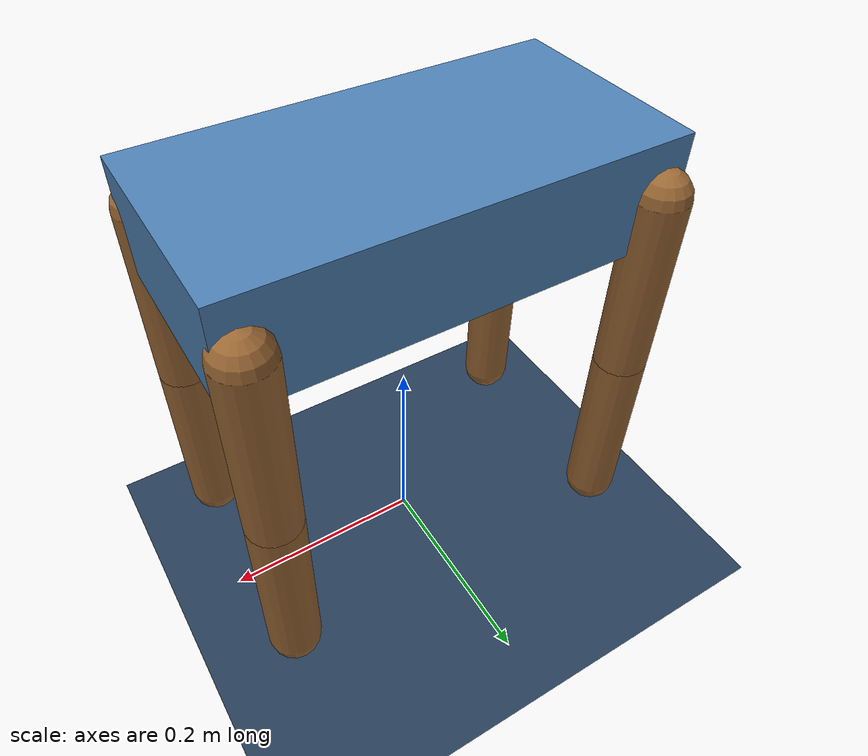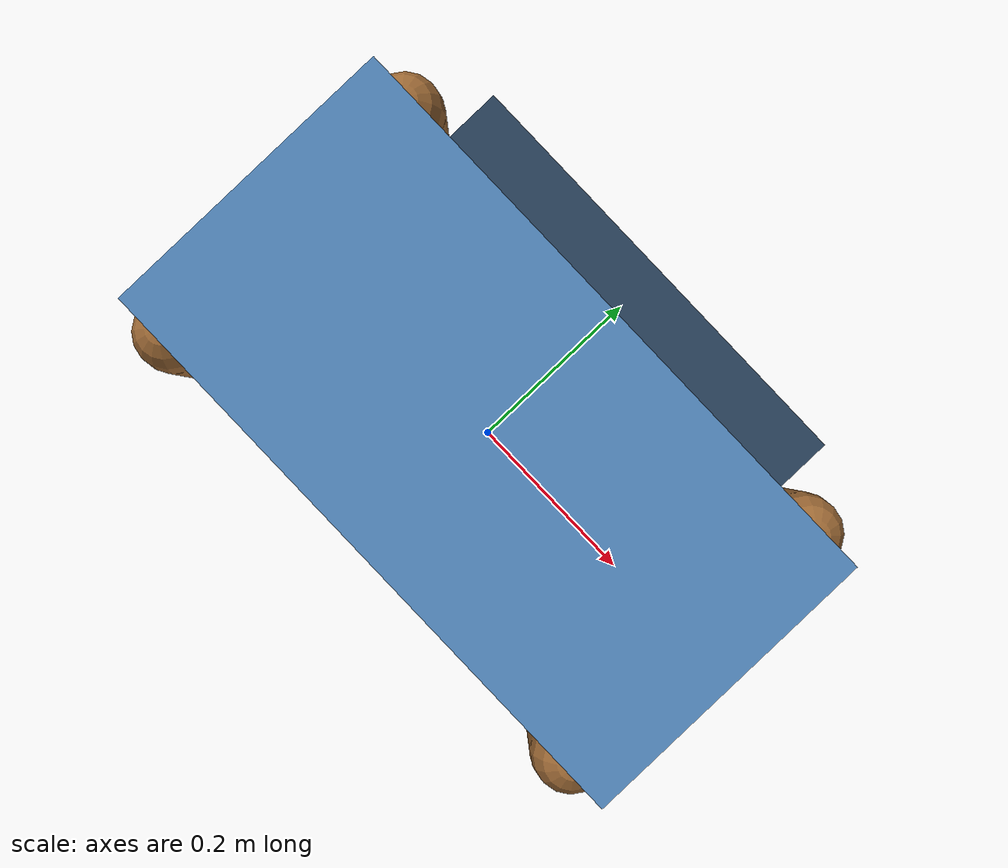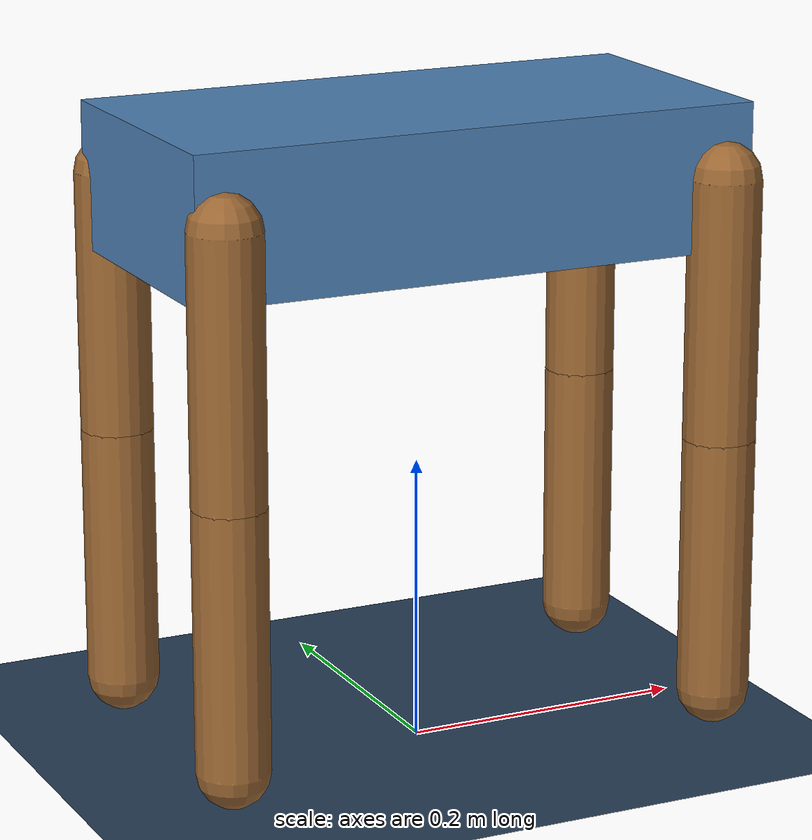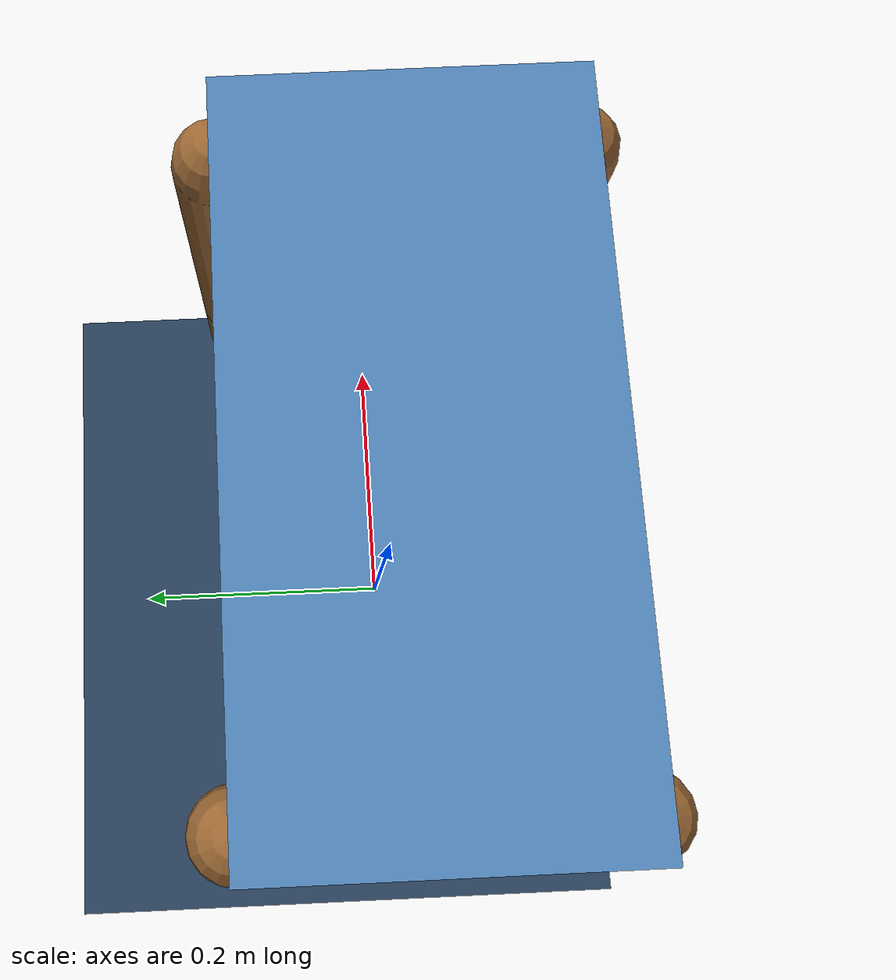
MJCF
<mujoco model="articulated_quadruped">

  <compiler angle="radian" autolimits="true"/>
  <option timestep="0.002" gravity="0 0 -9.81" integrator="implicitfast"/>

  <default>
    <default class="leg">
      <joint type="hinge" damping="0.6" armature="0.02" limited="true"/>
      <geom type="capsule" size="0.025" rgba="0.6 0.4 0.2 1" density="600" friction="0.8 0.01 0.001"/>
    </default>
  </default>

  <visual>
    <headlight ambient="0.4 0.4 0.4" diffuse="0.6 0.6 0.6" specular="0.2 0.2 0.2"/>
    <global azimuth="120" elevation="-20"/>
  </visual>

  <asset>
    <texture type="2d" name="ground" builtin="checker"
             rgb1="0.20 0.30 0.40" rgb2="0.10 0.18 0.28"
             width="256" height="256"/>
    <material name="ground_mat" texture="ground" texrepeat="6 6" reflectance="0.1"/>
    <material name="trunk_mat" rgba="0.3 0.5 0.7 1" specular="0.2"/>
  </asset>

  <worldbody>
    <light name="key" pos="2 2 4" dir="-0.4 -0.4 -1" diffuse="0.8 0.8 0.8"/>
    <geom name="floor" type="plane" size="0 0 0.05" pos="0 0 0"
          material="ground_mat" friction="0.8 0.01 0.001"/>

    <body name="trunk" pos="0 0 0.40">
      <freejoint name="root"/>
      <geom name="trunk_geom" type="box" size="0.20 0.10 0.05"
            mass="6.0" material="trunk_mat" friction="0.8 0.01 0.001"/>

      <body name="FL_thigh" pos="0.18 0.10 0">
        <joint name="FL_hip_roll" class="leg" axis="1 0 0" range="-0.6 0.6"/>
        <joint name="FL_hip_pitch" class="leg" axis="0 1 0" range="-1.2 1.2"/>
        <geom class="leg" fromto="0 0 0  0 0 -0.18"/>
        <body name="FL_shin" pos="0 0 -0.18">
          <joint name="FL_knee" class="leg" axis="0 1 0" range="-2.2 0.0"/>
          <geom class="leg" fromto="0 0 0  0 0 -0.18"/>
        </body>
      </body>

      <!-- Front-right leg -->
      <body name="FR_thigh" pos="0.18 -0.10 0">
        <joint name="FR_hip_roll" class="leg" axis="1 0 0" range="-0.6 0.6"/>
        <joint name="FR_hip_pitch" class="leg" axis="0 1 0" range="-1.2 1.2"/>
        <geom class="leg" fromto="0 0 0  0 0 -0.18"/>
        <body name="FR_shin" pos="0 0 -0.18">
          <joint name="FR_knee" class="leg" axis="0 1 0" range="-2.2 0.0"/>
          <geom class="leg" fromto="0 0 0  0 0 -0.18"/>
        </body>
      </body>

      <!-- Hind-left leg -->
      <body name="HL_thigh" pos="-0.18 0.10 0">
        <joint name="HL_hip_roll" class="leg" axis="1 0 0" range="-0.6 0.6"/>
        <joint name="HL_hip_pitch" class="leg" axis="0 1 0" range="-1.2 1.2"/>
        <geom class="leg" fromto="0 0 0  0 0 -0.18"/>
        <body name="HL_shin" pos="0 0 -0.18">
          <joint name="HL_knee" class="leg" axis="0 1 0" range="-2.2 0.0"/>
          <geom class="leg" fromto="0 0 0  0 0 -0.18"/>
        </body>
      </body>

      <!-- Hind-right leg -->
      <body name="HR_thigh" pos="-0.18 -0.10 0">
        <joint name="HR_hip_roll" class="leg" axis="1 0 0" range="-0.6 0.6"/>
        <joint name="HR_hip_pitch" class="leg" axis="0 1 0" range="-1.2 1.2"/>
        <geom class="leg" fromto="0 0 0  0 0 -0.18"/>
        <body name="HR_shin" pos="0 0 -0.18">
          <joint name="HR_knee" class="leg" axis="0 1 0" range="-2.2 0.0"/>
          <geom class="leg" fromto="0 0 0  0 0 -0.18"/>
        </body>
      </body>
    </body>
  </worldbody>

  <keyframe>
    <key name="stand"
         qpos="0 0 0.40  1 0 0 0
               0 0.6 -1.2
               0 0.6 -1.2
               0 0.6 -1.2
               0 0.6 -1.2"
         qvel="0 0 0  0 0 0
               0 0 0
               0 0 0
               0 0 0
               0 0 0"/>
  </keyframe>
</mujoco>
